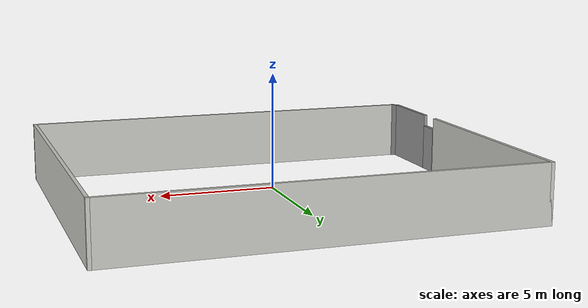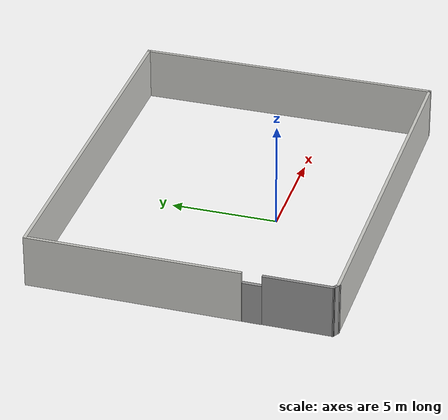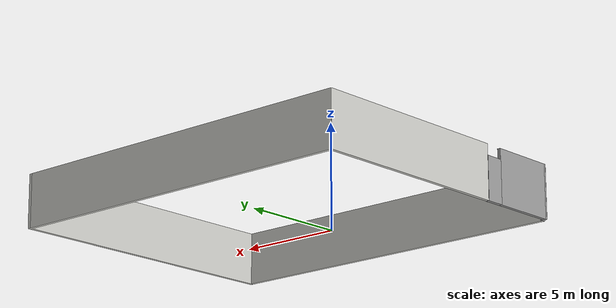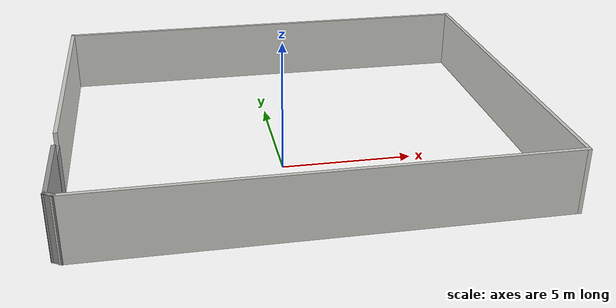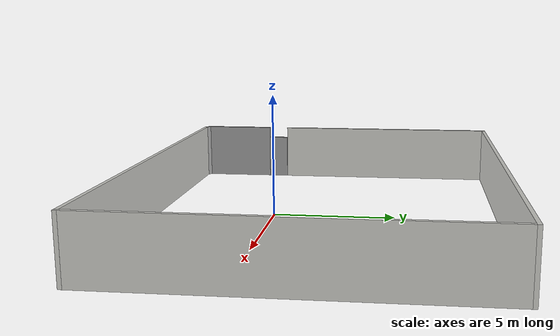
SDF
<?xml version='1.0'?>
<sdf version='1.7'>
  <model name='building'>
    <pose>0.724662 2.1237 0 0 -0 0</pose>
    <link name='Door_0'>
      <collision name='Door_0_Collision'>
        <geometry>
          <box>
            <size>0.9 0.17 2</size>
          </box>
        </geometry>
        <pose>0 0 1 0 -0 0</pose>
      </collision>
      <visual name='Door_0_Visual'>
        <pose>0 0 1 0 -0 0</pose>
        <geometry>
          <box>
            <size>0.9 0.17 2</size>
          </box>
        </geometry>
        <material>
          <script>
            <uri>file://media/materials/scripts/gazebo.material</uri>
            <name>Gazebo/Grey</name>
          </script>
        </material>
      </visual>
      <pose>-8.78129 -3.29799 0 0 -0 1.57275</pose>
    </link>
    <link name='Wall_19'>
      <collision name='Wall_19_Collision'>
        <geometry>
          <box>
            <size>3.25 0.15 2.5</size>
          </box>
        </geometry>
        <pose>0 0 1.25 0 -0 0</pose>
      </collision>
      <visual name='Wall_19_Visual'>
        <pose>0 0 1.25 0 -0 0</pose>
        <geometry>
          <box>
            <size>3.25 0.15 2.5</size>
          </box>
        </geometry>
        <material>
          <script>
            <uri>file://media/materials/scripts/gazebo.material</uri>
            <name>Gazebo/Grey</name>
          </script>
          <ambient>1 1 1 1</ambient>
        </material>
        <meta>
          <layer>0</layer>
        </meta>
      </visual>
      <pose>-8.78026 -5.36264 0 0 -0 -1.5708</pose>
    </link>
    <link name='Wall_21'>
      <collision name='Wall_21_Collision'>
        <geometry>
          <box>
            <size>0.437485 0.15 2.5</size>
          </box>
        </geometry>
        <pose>0 0 1.25 0 -0 0</pose>
      </collision>
      <visual name='Wall_21_Visual'>
        <pose>0 0 1.25 0 -0 0</pose>
        <geometry>
          <box>
            <size>0.437485 0.15 2.5</size>
          </box>
        </geometry>
        <material>
          <script>
            <uri>file://media/materials/scripts/gazebo.material</uri>
            <name>Gazebo/Grey</name>
          </script>
          <ambient>1 1 1 1</ambient>
        </material>
        <meta>
          <layer>0</layer>
        </meta>
      </visual>
      <pose>-8.65796 -6.98817 0 0 -0 -0.553232</pose>
    </link>
    <link name='Wall_5'>
      <collision name='Wall_5_Collision'>
        <geometry>
          <box>
            <size>10 0.15 2.5</size>
          </box>
        </geometry>
        <pose>0 0 1.25 0 -0 0</pose>
      </collision>
      <visual name='Wall_5_Visual'>
        <pose>0 0 1.25 0 -0 0</pose>
        <geometry>
          <box>
            <size>10 0.15 2.5</size>
          </box>
        </geometry>
        <material>
          <script>
            <uri>file://media/materials/scripts/gazebo.material</uri>
            <name>Gazebo/CeilingTiled</name>
          </script>
          <ambient>1 1 1 1</ambient>
        </material>
        <meta>
          <layer>0</layer>
        </meta>
      </visual>
      <pose>-8.79183 2.16681 0 0 -0 1.5708</pose>
    </link>
    <link name='Wall_6'>
      <collision name='Wall_6_Collision'>
        <geometry>
          <box>
            <size>17.75 0.15 2.5</size>
          </box>
        </geometry>
        <pose>0 0 1.25 0 -0 0</pose>
      </collision>
      <visual name='Wall_6_Visual'>
        <pose>0 0 1.25 0 -0 0</pose>
        <geometry>
          <box>
            <size>17.75 0.15 2.5</size>
          </box>
        </geometry>
        <material>
          <script>
            <uri>file://media/materials/scripts/gazebo.material</uri>
            <name>Gazebo/CeilingTiled</name>
          </script>
          <ambient>1 1 1 1</ambient>
        </material>
        <meta>
          <layer>0</layer>
        </meta>
      </visual>
      <pose>0.00817 7.09181 0 0 -0 0</pose>
    </link>
    <link name='Wall_7'>
      <collision name='Wall_7_Collision'>
        <geometry>
          <box>
            <size>14.3057 0.15 2.5</size>
          </box>
        </geometry>
        <pose>0 0 1.25 0 -0 0</pose>
      </collision>
      <visual name='Wall_7_Visual'>
        <pose>0 0 1.25 0 -0 0</pose>
        <geometry>
          <box>
            <size>14.3057 0.15 2.5</size>
          </box>
        </geometry>
        <material>
          <script>
            <uri>file://media/materials/scripts/gazebo.material</uri>
            <name>Gazebo/CeilingTiled</name>
          </script>
          <ambient>1 1 1 1</ambient>
        </material>
        <meta>
          <layer>0</layer>
        </meta>
      </visual>
      <pose>8.80825 0.014054 0 0 -0 -1.57078</pose>
    </link>
    <link name='Wall_8'>
      <collision name='Wall_8_Collision'>
        <geometry>
          <box>
            <size>17.4943 0.15 2.5</size>
          </box>
        </geometry>
        <pose>0 0 1.25 0 -0 0</pose>
      </collision>
      <visual name='Wall_8_Visual'>
        <pose>0 0 1.25 0 -0 0</pose>
        <geometry>
          <box>
            <size>17.4943 0.15 2.5</size>
          </box>
        </geometry>
        <material>
          <script>
            <uri>file://media/materials/scripts/gazebo.material</uri>
            <name>Gazebo/CeilingTiled</name>
          </script>
          <ambient>1 1 1 1</ambient>
        </material>
        <meta>
          <layer>0</layer>
        </meta>
      </visual>
      <pose>0.136338 -7.0637 0 0 -0 3.14159</pose>
    </link>
    <static>1</static>
  </model>
</sdf>
